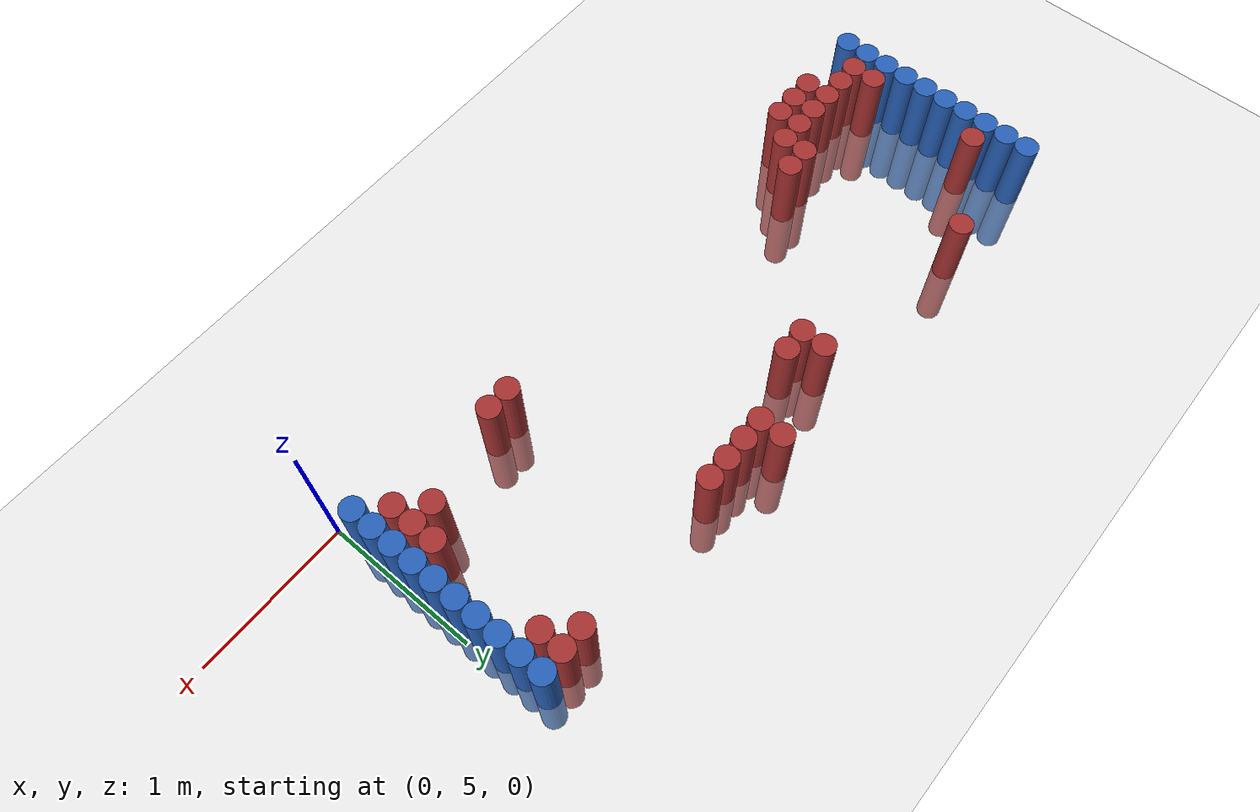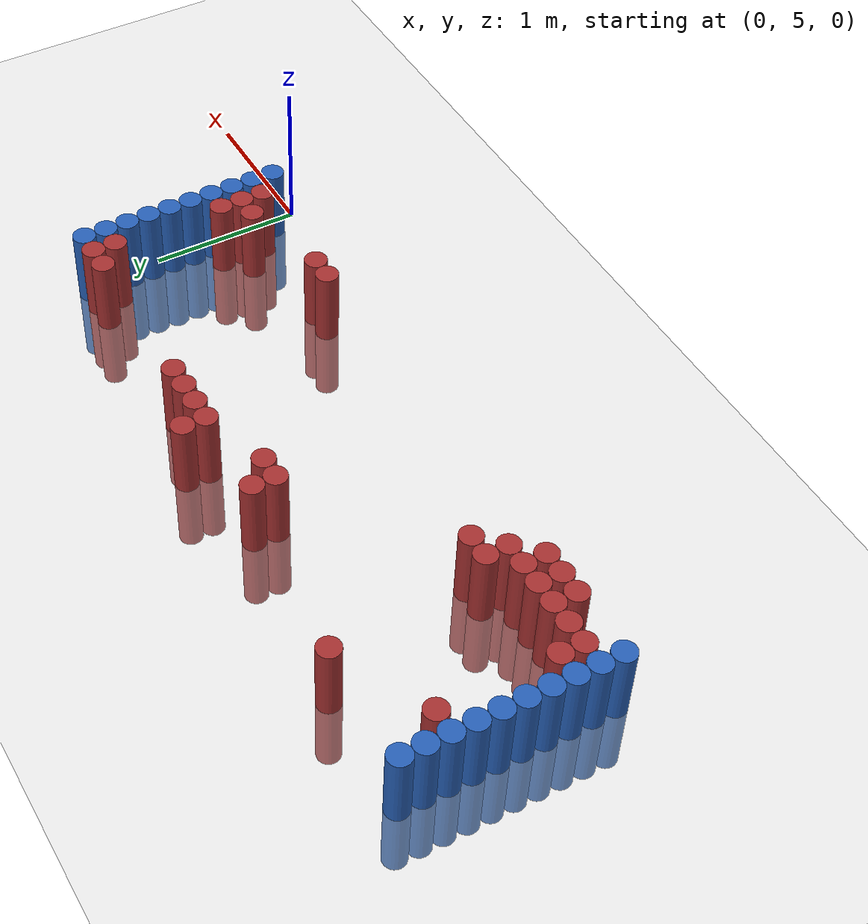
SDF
<sdf version="1.6">
 <world name="default">
  <model name="ground_plane">
   <static>1</static>
   <link name="link">
    <collision name="collision">
     <geometry><plane><normal>0 0 1</normal><size>100 100</size></plane></geometry>
     <surface><friction><ode><mu>100</mu><mu2>50</mu2></ode></friction></surface>
    </collision>
    <visual name="visual">
     <cast_shadows>0</cast_shadows>
     <geometry><plane><normal>0 0 1</normal><size>100 100</size></plane></geometry>
     <material>
      <script><uri>file://media/materials/scripts/gazebo.material</uri><name>Gazebo/Grey</name></script>
     </material>
    </visual>
   </link>
  </model>
  <model name="unit_cylinder_97">
   <static>1</static>
   <pose>-4.425000 5.325000 0.000000 0.000000 0.000000 0.000000</pose>
   <link name="link">
    <inertial>
     <mass>1</mass>
     <inertia><ixx>0.145833</ixx><ixy>0</ixy><ixz>0</ixz><iyy>0.145833</iyy><iyz>0</iyz><izz>0.125</izz></inertia>
    </inertial>
    <collision name="collision">
     <geometry><cylinder><radius>0.075000</radius><length>1</length></cylinder></geometry>
    </collision>
    <visual name="visual">
     <geometry><cylinder><radius>0.075000</radius><length>1</length></cylinder></geometry>
     <material>
      <ambient>0.152000 0.379000 0.720000 1</ambient>
      <diffuse>0.152000 0.379000 0.720000 1</diffuse>
     </material>
     <material>
      <script><name>Gazebo/Grey</name><uri>file://media/materials/scripts/gazebo.material</uri></script>
     </material>
    </visual>
   </link>
  </model>
  <model name="unit_cylinder_98">
   <static>1</static>
   <pose>-4.425000 5.475000 0.000000 0.000000 0.000000 0.000000</pose>
   <link name="link">
    <inertial>
     <mass>1</mass>
     <inertia><ixx>0.145833</ixx><ixy>0</ixy><ixz>0</ixz><iyy>0.145833</iyy><iyz>0</iyz><izz>0.125</izz></inertia>
    </inertial>
    <collision name="collision">
     <geometry><cylinder><radius>0.075000</radius><length>1</length></cylinder></geometry>
    </collision>
    <visual name="visual">
     <geometry><cylinder><radius>0.075000</radius><length>1</length></cylinder></geometry>
     <material>
      <ambient>0.152000 0.379000 0.720000 1</ambient>
      <diffuse>0.152000 0.379000 0.720000 1</diffuse>
     </material>
     <material>
      <script><name>Gazebo/Grey</name><uri>file://media/materials/scripts/gazebo.material</uri></script>
     </material>
    </visual>
   </link>
  </model>
  <model name="unit_cylinder_99">
   <static>1</static>
   <pose>-4.425000 5.625000 0.000000 0.000000 0.000000 0.000000</pose>
   <link name="link">
    <inertial>
     <mass>1</mass>
     <inertia><ixx>0.145833</ixx><ixy>0</ixy><ixz>0</ixz><iyy>0.145833</iyy><iyz>0</iyz><izz>0.125</izz></inertia>
    </inertial>
    <collision name="collision">
     <geometry><cylinder><radius>0.075000</radius><length>1</length></cylinder></geometry>
    </collision>
    <visual name="visual">
     <geometry><cylinder><radius>0.075000</radius><length>1</length></cylinder></geometry>
     <material>
      <ambient>0.152000 0.379000 0.720000 1</ambient>
      <diffuse>0.152000 0.379000 0.720000 1</diffuse>
     </material>
     <material>
      <script><name>Gazebo/Grey</name><uri>file://media/materials/scripts/gazebo.material</uri></script>
     </material>
    </visual>
   </link>
  </model>
  <model name="unit_cylinder_100">
   <static>1</static>
   <pose>-4.425000 5.775000 0.000000 0.000000 0.000000 0.000000</pose>
   <link name="link">
    <inertial>
     <mass>1</mass>
     <inertia><ixx>0.145833</ixx><ixy>0</ixy><ixz>0</ixz><iyy>0.145833</iyy><iyz>0</iyz><izz>0.125</izz></inertia>
    </inertial>
    <collision name="collision">
     <geometry><cylinder><radius>0.075000</radius><length>1</length></cylinder></geometry>
    </collision>
    <visual name="visual">
     <geometry><cylinder><radius>0.075000</radius><length>1</length></cylinder></geometry>
     <material>
      <ambient>0.152000 0.379000 0.720000 1</ambient>
      <diffuse>0.152000 0.379000 0.720000 1</diffuse>
     </material>
     <material>
      <script><name>Gazebo/Grey</name><uri>file://media/materials/scripts/gazebo.material</uri></script>
     </material>
    </visual>
   </link>
  </model>
  <model name="unit_cylinder_101">
   <static>1</static>
   <pose>-4.425000 5.925000 0.000000 0.000000 0.000000 0.000000</pose>
   <link name="link">
    <inertial>
     <mass>1</mass>
     <inertia><ixx>0.145833</ixx><ixy>0</ixy><ixz>0</ixz><iyy>0.145833</iyy><iyz>0</iyz><izz>0.125</izz></inertia>
    </inertial>
    <collision name="collision">
     <geometry><cylinder><radius>0.075000</radius><length>1</length></cylinder></geometry>
    </collision>
    <visual name="visual">
     <geometry><cylinder><radius>0.075000</radius><length>1</length></cylinder></geometry>
     <material>
      <ambient>0.152000 0.379000 0.720000 1</ambient>
      <diffuse>0.152000 0.379000 0.720000 1</diffuse>
     </material>
     <material>
      <script><name>Gazebo/Grey</name><uri>file://media/materials/scripts/gazebo.material</uri></script>
     </material>
    </visual>
   </link>
  </model>
  <model name="unit_cylinder_102">
   <static>1</static>
   <pose>-4.425000 6.075000 0.000000 0.000000 0.000000 0.000000</pose>
   <link name="link">
    <inertial>
     <mass>1</mass>
     <inertia><ixx>0.145833</ixx><ixy>0</ixy><ixz>0</ixz><iyy>0.145833</iyy><iyz>0</iyz><izz>0.125</izz></inertia>
    </inertial>
    <collision name="collision">
     <geometry><cylinder><radius>0.075000</radius><length>1</length></cylinder></geometry>
    </collision>
    <visual name="visual">
     <geometry><cylinder><radius>0.075000</radius><length>1</length></cylinder></geometry>
     <material>
      <ambient>0.152000 0.379000 0.720000 1</ambient>
      <diffuse>0.152000 0.379000 0.720000 1</diffuse>
     </material>
     <material>
      <script><name>Gazebo/Grey</name><uri>file://media/materials/scripts/gazebo.material</uri></script>
     </material>
    </visual>
   </link>
  </model>
  <model name="unit_cylinder_103">
   <static>1</static>
   <pose>-4.425000 6.225000 0.000000 0.000000 0.000000 0.000000</pose>
   <link name="link">
    <inertial>
     <mass>1</mass>
     <inertia><ixx>0.145833</ixx><ixy>0</ixy><ixz>0</ixz><iyy>0.145833</iyy><iyz>0</iyz><izz>0.125</izz></inertia>
    </inertial>
    <collision name="collision">
     <geometry><cylinder><radius>0.075000</radius><length>1</length></cylinder></geometry>
    </collision>
    <visual name="visual">
     <geometry><cylinder><radius>0.075000</radius><length>1</length></cylinder></geometry>
     <material>
      <ambient>0.152000 0.379000 0.720000 1</ambient>
      <diffuse>0.152000 0.379000 0.720000 1</diffuse>
     </material>
     <material>
      <script><name>Gazebo/Grey</name><uri>file://media/materials/scripts/gazebo.material</uri></script>
     </material>
    </visual>
   </link>
  </model>
  <model name="unit_cylinder_104">
   <static>1</static>
   <pose>-4.425000 6.375000 0.000000 0.000000 0.000000 0.000000</pose>
   <link name="link">
    <inertial>
     <mass>1</mass>
     <inertia><ixx>0.145833</ixx><ixy>0</ixy><ixz>0</ixz><iyy>0.145833</iyy><iyz>0</iyz><izz>0.125</izz></inertia>
    </inertial>
    <collision name="collision">
     <geometry><cylinder><radius>0.075000</radius><length>1</length></cylinder></geometry>
    </collision>
    <visual name="visual">
     <geometry><cylinder><radius>0.075000</radius><length>1</length></cylinder></geometry>
     <material>
      <ambient>0.152000 0.379000 0.720000 1</ambient>
      <diffuse>0.152000 0.379000 0.720000 1</diffuse>
     </material>
     <material>
      <script><name>Gazebo/Grey</name><uri>file://media/materials/scripts/gazebo.material</uri></script>
     </material>
    </visual>
   </link>
  </model>
  <model name="unit_cylinder_105">
   <static>1</static>
   <pose>-4.425000 6.525000 0.000000 0.000000 0.000000 0.000000</pose>
   <link name="link">
    <inertial>
     <mass>1</mass>
     <inertia><ixx>0.145833</ixx><ixy>0</ixy><ixz>0</ixz><iyy>0.145833</iyy><iyz>0</iyz><izz>0.125</izz></inertia>
    </inertial>
    <collision name="collision">
     <geometry><cylinder><radius>0.075000</radius><length>1</length></cylinder></geometry>
    </collision>
    <visual name="visual">
     <geometry><cylinder><radius>0.075000</radius><length>1</length></cylinder></geometry>
     <material>
      <ambient>0.152000 0.379000 0.720000 1</ambient>
      <diffuse>0.152000 0.379000 0.720000 1</diffuse>
     </material>
     <material>
      <script><name>Gazebo/Grey</name><uri>file://media/materials/scripts/gazebo.material</uri></script>
     </material>
    </visual>
   </link>
  </model>
  <model name="unit_cylinder_106">
   <static>1</static>
   <pose>-4.425000 6.675000 0.000000 0.000000 0.000000 0.000000</pose>
   <link name="link">
    <inertial>
     <mass>1</mass>
     <inertia><ixx>0.145833</ixx><ixy>0</ixy><ixz>0</ixz><iyy>0.145833</iyy><iyz>0</iyz><izz>0.125</izz></inertia>
    </inertial>
    <collision name="collision">
     <geometry><cylinder><radius>0.075000</radius><length>1</length></cylinder></geometry>
    </collision>
    <visual name="visual">
     <geometry><cylinder><radius>0.075000</radius><length>1</length></cylinder></geometry>
     <material>
      <ambient>0.152000 0.379000 0.720000 1</ambient>
      <diffuse>0.152000 0.379000 0.720000 1</diffuse>
     </material>
     <material>
      <script><name>Gazebo/Grey</name><uri>file://media/materials/scripts/gazebo.material</uri></script>
     </material>
    </visual>
   </link>
  </model>
  <model name="unit_cylinder_127">
   <static>1</static>
   <pose>-4.275000 5.475000 0.000000 0.000000 0.000000 0.000000</pose>
   <link name="link">
    <inertial>
     <mass>1</mass>
     <inertia><ixx>0.145833</ixx><ixy>0</ixy><ixz>0</ixz><iyy>0.145833</iyy><iyz>0</iyz><izz>0.125</izz></inertia>
    </inertial>
    <collision name="collision">
     <geometry><cylinder><radius>0.075000</radius><length>1</length></cylinder></geometry>
    </collision>
    <visual name="visual">
     <geometry><cylinder><radius>0.075000</radius><length>1</length></cylinder></geometry>
     <material>
      <ambient>0.648000 0.192000 0.192000 1</ambient>
      <diffuse>0.648000 0.192000 0.192000 1</diffuse>
     </material>
     <material>
      <script><name>Gazebo/Grey</name><uri>file://media/materials/scripts/gazebo.material</uri></script>
     </material>
    </visual>
   </link>
  </model>
  <model name="unit_cylinder_128">
   <static>1</static>
   <pose>-4.275000 5.625000 0.000000 0.000000 0.000000 0.000000</pose>
   <link name="link">
    <inertial>
     <mass>1</mass>
     <inertia><ixx>0.145833</ixx><ixy>0</ixy><ixz>0</ixz><iyy>0.145833</iyy><iyz>0</iyz><izz>0.125</izz></inertia>
    </inertial>
    <collision name="collision">
     <geometry><cylinder><radius>0.075000</radius><length>1</length></cylinder></geometry>
    </collision>
    <visual name="visual">
     <geometry><cylinder><radius>0.075000</radius><length>1</length></cylinder></geometry>
     <material>
      <ambient>0.648000 0.192000 0.192000 1</ambient>
      <diffuse>0.648000 0.192000 0.192000 1</diffuse>
     </material>
     <material>
      <script><name>Gazebo/Grey</name><uri>file://media/materials/scripts/gazebo.material</uri></script>
     </material>
    </visual>
   </link>
  </model>
  <model name="unit_cylinder_129">
   <static>1</static>
   <pose>-4.275000 6.375000 0.000000 0.000000 0.000000 0.000000</pose>
   <link name="link">
    <inertial>
     <mass>1</mass>
     <inertia><ixx>0.145833</ixx><ixy>0</ixy><ixz>0</ixz><iyy>0.145833</iyy><iyz>0</iyz><izz>0.125</izz></inertia>
    </inertial>
    <collision name="collision">
     <geometry><cylinder><radius>0.075000</radius><length>1</length></cylinder></geometry>
    </collision>
    <visual name="visual">
     <geometry><cylinder><radius>0.075000</radius><length>1</length></cylinder></geometry>
     <material>
      <ambient>0.648000 0.192000 0.192000 1</ambient>
      <diffuse>0.648000 0.192000 0.192000 1</diffuse>
     </material>
     <material>
      <script><name>Gazebo/Grey</name><uri>file://media/materials/scripts/gazebo.material</uri></script>
     </material>
    </visual>
   </link>
  </model>
  <model name="unit_cylinder_135">
   <static>1</static>
   <pose>-4.125000 5.475000 0.000000 0.000000 0.000000 0.000000</pose>
   <link name="link">
    <inertial>
     <mass>1</mass>
     <inertia><ixx>0.145833</ixx><ixy>0</ixy><ixz>0</ixz><iyy>0.145833</iyy><iyz>0</iyz><izz>0.125</izz></inertia>
    </inertial>
    <collision name="collision">
     <geometry><cylinder><radius>0.075000</radius><length>1</length></cylinder></geometry>
    </collision>
    <visual name="visual">
     <geometry><cylinder><radius>0.075000</radius><length>1</length></cylinder></geometry>
     <material>
      <ambient>0.648000 0.192000 0.192000 1</ambient>
      <diffuse>0.648000 0.192000 0.192000 1</diffuse>
     </material>
     <material>
      <script><name>Gazebo/Grey</name><uri>file://media/materials/scripts/gazebo.material</uri></script>
     </material>
    </visual>
   </link>
  </model>
  <model name="unit_cylinder_137">
   <static>1</static>
   <pose>-3.975000 5.325000 0.000000 0.000000 0.000000 0.000000</pose>
   <link name="link">
    <inertial>
     <mass>1</mass>
     <inertia><ixx>0.145833</ixx><ixy>0</ixy><ixz>0</ixz><iyy>0.145833</iyy><iyz>0</iyz><izz>0.125</izz></inertia>
    </inertial>
    <collision name="collision">
     <geometry><cylinder><radius>0.075000</radius><length>1</length></cylinder></geometry>
    </collision>
    <visual name="visual">
     <geometry><cylinder><radius>0.075000</radius><length>1</length></cylinder></geometry>
     <material>
      <ambient>0.648000 0.192000 0.192000 1</ambient>
      <diffuse>0.648000 0.192000 0.192000 1</diffuse>
     </material>
     <material>
      <script><name>Gazebo/Grey</name><uri>file://media/materials/scripts/gazebo.material</uri></script>
     </material>
    </visual>
   </link>
  </model>
  <model name="unit_cylinder_138">
   <static>1</static>
   <pose>-3.975000 5.475000 0.000000 0.000000 0.000000 0.000000</pose>
   <link name="link">
    <inertial>
     <mass>1</mass>
     <inertia><ixx>0.145833</ixx><ixy>0</ixy><ixz>0</ixz><iyy>0.145833</iyy><iyz>0</iyz><izz>0.125</izz></inertia>
    </inertial>
    <collision name="collision">
     <geometry><cylinder><radius>0.075000</radius><length>1</length></cylinder></geometry>
    </collision>
    <visual name="visual">
     <geometry><cylinder><radius>0.075000</radius><length>1</length></cylinder></geometry>
     <material>
      <ambient>0.648000 0.192000 0.192000 1</ambient>
      <diffuse>0.648000 0.192000 0.192000 1</diffuse>
     </material>
     <material>
      <script><name>Gazebo/Grey</name><uri>file://media/materials/scripts/gazebo.material</uri></script>
     </material>
    </visual>
   </link>
  </model>
  <model name="unit_cylinder_139">
   <static>1</static>
   <pose>-3.825000 5.325000 0.000000 0.000000 0.000000 0.000000</pose>
   <link name="link">
    <inertial>
     <mass>1</mass>
     <inertia><ixx>0.145833</ixx><ixy>0</ixy><ixz>0</ixz><iyy>0.145833</iyy><iyz>0</iyz><izz>0.125</izz></inertia>
    </inertial>
    <collision name="collision">
     <geometry><cylinder><radius>0.075000</radius><length>1</length></cylinder></geometry>
    </collision>
    <visual name="visual">
     <geometry><cylinder><radius>0.075000</radius><length>1</length></cylinder></geometry>
     <material>
      <ambient>0.648000 0.192000 0.192000 1</ambient>
      <diffuse>0.648000 0.192000 0.192000 1</diffuse>
     </material>
     <material>
      <script><name>Gazebo/Grey</name><uri>file://media/materials/scripts/gazebo.material</uri></script>
     </material>
    </visual>
   </link>
  </model>
  <model name="unit_cylinder_140">
   <static>1</static>
   <pose>-3.825000 5.475000 0.000000 0.000000 0.000000 0.000000</pose>
   <link name="link">
    <inertial>
     <mass>1</mass>
     <inertia><ixx>0.145833</ixx><ixy>0</ixy><ixz>0</ixz><iyy>0.145833</iyy><iyz>0</iyz><izz>0.125</izz></inertia>
    </inertial>
    <collision name="collision">
     <geometry><cylinder><radius>0.075000</radius><length>1</length></cylinder></geometry>
    </collision>
    <visual name="visual">
     <geometry><cylinder><radius>0.075000</radius><length>1</length></cylinder></geometry>
     <material>
      <ambient>0.648000 0.192000 0.192000 1</ambient>
      <diffuse>0.648000 0.192000 0.192000 1</diffuse>
     </material>
     <material>
      <script><name>Gazebo/Grey</name><uri>file://media/materials/scripts/gazebo.material</uri></script>
     </material>
    </visual>
   </link>
  </model>
  <model name="unit_cylinder_146">
   <static>1</static>
   <pose>-3.675000 5.325000 0.000000 0.000000 0.000000 0.000000</pose>
   <link name="link">
    <inertial>
     <mass>1</mass>
     <inertia><ixx>0.145833</ixx><ixy>0</ixy><ixz>0</ixz><iyy>0.145833</iyy><iyz>0</iyz><izz>0.125</izz></inertia>
    </inertial>
    <collision name="collision">
     <geometry><cylinder><radius>0.075000</radius><length>1</length></cylinder></geometry>
    </collision>
    <visual name="visual">
     <geometry><cylinder><radius>0.075000</radius><length>1</length></cylinder></geometry>
     <material>
      <ambient>0.648000 0.192000 0.192000 1</ambient>
      <diffuse>0.648000 0.192000 0.192000 1</diffuse>
     </material>
     <material>
      <script><name>Gazebo/Grey</name><uri>file://media/materials/scripts/gazebo.material</uri></script>
     </material>
    </visual>
   </link>
  </model>
  <model name="unit_cylinder_147">
   <static>1</static>
   <pose>-3.675000 5.475000 0.000000 0.000000 0.000000 0.000000</pose>
   <link name="link">
    <inertial>
     <mass>1</mass>
     <inertia><ixx>0.145833</ixx><ixy>0</ixy><ixz>0</ixz><iyy>0.145833</iyy><iyz>0</iyz><izz>0.125</izz></inertia>
    </inertial>
    <collision name="collision">
     <geometry><cylinder><radius>0.075000</radius><length>1</length></cylinder></geometry>
    </collision>
    <visual name="visual">
     <geometry><cylinder><radius>0.075000</radius><length>1</length></cylinder></geometry>
     <material>
      <ambient>0.648000 0.192000 0.192000 1</ambient>
      <diffuse>0.648000 0.192000 0.192000 1</diffuse>
     </material>
     <material>
      <script><name>Gazebo/Grey</name><uri>file://media/materials/scripts/gazebo.material</uri></script>
     </material>
    </visual>
   </link>
  </model>
  <model name="unit_cylinder_148">
   <static>1</static>
   <pose>-3.675000 6.675000 0.000000 0.000000 0.000000 0.000000</pose>
   <link name="link">
    <inertial>
     <mass>1</mass>
     <inertia><ixx>0.145833</ixx><ixy>0</ixy><ixz>0</ixz><iyy>0.145833</iyy><iyz>0</iyz><izz>0.125</izz></inertia>
    </inertial>
    <collision name="collision">
     <geometry><cylinder><radius>0.075000</radius><length>1</length></cylinder></geometry>
    </collision>
    <visual name="visual">
     <geometry><cylinder><radius>0.075000</radius><length>1</length></cylinder></geometry>
     <material>
      <ambient>0.648000 0.192000 0.192000 1</ambient>
      <diffuse>0.648000 0.192000 0.192000 1</diffuse>
     </material>
     <material>
      <script><name>Gazebo/Grey</name><uri>file://media/materials/scripts/gazebo.material</uri></script>
     </material>
    </visual>
   </link>
  </model>
  <model name="unit_cylinder_153">
   <static>1</static>
   <pose>-3.525000 5.475000 0.000000 0.000000 0.000000 0.000000</pose>
   <link name="link">
    <inertial>
     <mass>1</mass>
     <inertia><ixx>0.145833</ixx><ixy>0</ixy><ixz>0</ixz><iyy>0.145833</iyy><iyz>0</iyz><izz>0.125</izz></inertia>
    </inertial>
    <collision name="collision">
     <geometry><cylinder><radius>0.075000</radius><length>1</length></cylinder></geometry>
    </collision>
    <visual name="visual">
     <geometry><cylinder><radius>0.075000</radius><length>1</length></cylinder></geometry>
     <material>
      <ambient>0.648000 0.192000 0.192000 1</ambient>
      <diffuse>0.648000 0.192000 0.192000 1</diffuse>
     </material>
     <material>
      <script><name>Gazebo/Grey</name><uri>file://media/materials/scripts/gazebo.material</uri></script>
     </material>
    </visual>
   </link>
  </model>
  <model name="unit_cylinder_154">
   <static>1</static>
   <pose>-3.525000 5.625000 0.000000 0.000000 0.000000 0.000000</pose>
   <link name="link">
    <inertial>
     <mass>1</mass>
     <inertia><ixx>0.145833</ixx><ixy>0</ixy><ixz>0</ixz><iyy>0.145833</iyy><iyz>0</iyz><izz>0.125</izz></inertia>
    </inertial>
    <collision name="collision">
     <geometry><cylinder><radius>0.075000</radius><length>1</length></cylinder></geometry>
    </collision>
    <visual name="visual">
     <geometry><cylinder><radius>0.075000</radius><length>1</length></cylinder></geometry>
     <material>
      <ambient>0.648000 0.192000 0.192000 1</ambient>
      <diffuse>0.648000 0.192000 0.192000 1</diffuse>
     </material>
     <material>
      <script><name>Gazebo/Grey</name><uri>file://media/materials/scripts/gazebo.material</uri></script>
     </material>
    </visual>
   </link>
  </model>
  <model name="unit_cylinder_155">
   <static>1</static>
   <pose>-3.375000 5.625000 0.000000 0.000000 0.000000 0.000000</pose>
   <link name="link">
    <inertial>
     <mass>1</mass>
     <inertia><ixx>0.145833</ixx><ixy>0</ixy><ixz>0</ixz><iyy>0.145833</iyy><iyz>0</iyz><izz>0.125</izz></inertia>
    </inertial>
    <collision name="collision">
     <geometry><cylinder><radius>0.075000</radius><length>1</length></cylinder></geometry>
    </collision>
    <visual name="visual">
     <geometry><cylinder><radius>0.075000</radius><length>1</length></cylinder></geometry>
     <material>
      <ambient>0.648000 0.192000 0.192000 1</ambient>
      <diffuse>0.648000 0.192000 0.192000 1</diffuse>
     </material>
     <material>
      <script><name>Gazebo/Grey</name><uri>file://media/materials/scripts/gazebo.material</uri></script>
     </material>
    </visual>
   </link>
  </model>
  <model name="unit_cylinder_162">
   <static>1</static>
   <pose>-2.475000 6.375000 0.000000 0.000000 0.000000 0.000000</pose>
   <link name="link">
    <inertial>
     <mass>1</mass>
     <inertia><ixx>0.145833</ixx><ixy>0</ixy><ixz>0</ixz><iyy>0.145833</iyy><iyz>0</iyz><izz>0.125</izz></inertia>
    </inertial>
    <collision name="collision">
     <geometry><cylinder><radius>0.075000</radius><length>1</length></cylinder></geometry>
    </collision>
    <visual name="visual">
     <geometry><cylinder><radius>0.075000</radius><length>1</length></cylinder></geometry>
     <material>
      <ambient>0.648000 0.192000 0.192000 1</ambient>
      <diffuse>0.648000 0.192000 0.192000 1</diffuse>
     </material>
     <material>
      <script><name>Gazebo/Grey</name><uri>file://media/materials/scripts/gazebo.material</uri></script>
     </material>
    </visual>
   </link>
  </model>
  <model name="unit_cylinder_163">
   <static>1</static>
   <pose>-2.475000 6.525000 0.000000 0.000000 0.000000 0.000000</pose>
   <link name="link">
    <inertial>
     <mass>1</mass>
     <inertia><ixx>0.145833</ixx><ixy>0</ixy><ixz>0</ixz><iyy>0.145833</iyy><iyz>0</iyz><izz>0.125</izz></inertia>
    </inertial>
    <collision name="collision">
     <geometry><cylinder><radius>0.075000</radius><length>1</length></cylinder></geometry>
    </collision>
    <visual name="visual">
     <geometry><cylinder><radius>0.075000</radius><length>1</length></cylinder></geometry>
     <material>
      <ambient>0.648000 0.192000 0.192000 1</ambient>
      <diffuse>0.648000 0.192000 0.192000 1</diffuse>
     </material>
     <material>
      <script><name>Gazebo/Grey</name><uri>file://media/materials/scripts/gazebo.material</uri></script>
     </material>
    </visual>
   </link>
  </model>
  <model name="unit_cylinder_164">
   <static>1</static>
   <pose>-2.325000 6.375000 0.000000 0.000000 0.000000 0.000000</pose>
   <link name="link">
    <inertial>
     <mass>1</mass>
     <inertia><ixx>0.145833</ixx><ixy>0</ixy><ixz>0</ixz><iyy>0.145833</iyy><iyz>0</iyz><izz>0.125</izz></inertia>
    </inertial>
    <collision name="collision">
     <geometry><cylinder><radius>0.075000</radius><length>1</length></cylinder></geometry>
    </collision>
    <visual name="visual">
     <geometry><cylinder><radius>0.075000</radius><length>1</length></cylinder></geometry>
     <material>
      <ambient>0.648000 0.192000 0.192000 1</ambient>
      <diffuse>0.648000 0.192000 0.192000 1</diffuse>
     </material>
     <material>
      <script><name>Gazebo/Grey</name><uri>file://media/materials/scripts/gazebo.material</uri></script>
     </material>
    </visual>
   </link>
  </model>
  <model name="unit_cylinder_165">
   <static>1</static>
   <pose>-1.875000 6.525000 0.000000 0.000000 0.000000 0.000000</pose>
   <link name="link">
    <inertial>
     <mass>1</mass>
     <inertia><ixx>0.145833</ixx><ixy>0</ixy><ixz>0</ixz><iyy>0.145833</iyy><iyz>0</iyz><izz>0.125</izz></inertia>
    </inertial>
    <collision name="collision">
     <geometry><cylinder><radius>0.075000</radius><length>1</length></cylinder></geometry>
    </collision>
    <visual name="visual">
     <geometry><cylinder><radius>0.075000</radius><length>1</length></cylinder></geometry>
     <material>
      <ambient>0.648000 0.192000 0.192000 1</ambient>
      <diffuse>0.648000 0.192000 0.192000 1</diffuse>
     </material>
     <material>
      <script><name>Gazebo/Grey</name><uri>file://media/materials/scripts/gazebo.material</uri></script>
     </material>
    </visual>
   </link>
  </model>
  <model name="unit_cylinder_166">
   <static>1</static>
   <pose>-1.875000 6.675000 0.000000 0.000000 0.000000 0.000000</pose>
   <link name="link">
    <inertial>
     <mass>1</mass>
     <inertia><ixx>0.145833</ixx><ixy>0</ixy><ixz>0</ixz><iyy>0.145833</iyy><iyz>0</iyz><izz>0.125</izz></inertia>
    </inertial>
    <collision name="collision">
     <geometry><cylinder><radius>0.075000</radius><length>1</length></cylinder></geometry>
    </collision>
    <visual name="visual">
     <geometry><cylinder><radius>0.075000</radius><length>1</length></cylinder></geometry>
     <material>
      <ambient>0.648000 0.192000 0.192000 1</ambient>
      <diffuse>0.648000 0.192000 0.192000 1</diffuse>
     </material>
     <material>
      <script><name>Gazebo/Grey</name><uri>file://media/materials/scripts/gazebo.material</uri></script>
     </material>
    </visual>
   </link>
  </model>
  <model name="unit_cylinder_170">
   <static>1</static>
   <pose>-1.725000 6.525000 0.000000 0.000000 0.000000 0.000000</pose>
   <link name="link">
    <inertial>
     <mass>1</mass>
     <inertia><ixx>0.145833</ixx><ixy>0</ixy><ixz>0</ixz><iyy>0.145833</iyy><iyz>0</iyz><izz>0.125</izz></inertia>
    </inertial>
    <collision name="collision">
     <geometry><cylinder><radius>0.075000</radius><length>1</length></cylinder></geometry>
    </collision>
    <visual name="visual">
     <geometry><cylinder><radius>0.075000</radius><length>1</length></cylinder></geometry>
     <material>
      <ambient>0.648000 0.192000 0.192000 1</ambient>
      <diffuse>0.648000 0.192000 0.192000 1</diffuse>
     </material>
     <material>
      <script><name>Gazebo/Grey</name><uri>file://media/materials/scripts/gazebo.material</uri></script>
     </material>
    </visual>
   </link>
  </model>
  <model name="unit_cylinder_176">
   <static>1</static>
   <pose>-1.575000 6.525000 0.000000 0.000000 0.000000 0.000000</pose>
   <link name="link">
    <inertial>
     <mass>1</mass>
     <inertia><ixx>0.145833</ixx><ixy>0</ixy><ixz>0</ixz><iyy>0.145833</iyy><iyz>0</iyz><izz>0.125</izz></inertia>
    </inertial>
    <collision name="collision">
     <geometry><cylinder><radius>0.075000</radius><length>1</length></cylinder></geometry>
    </collision>
    <visual name="visual">
     <geometry><cylinder><radius>0.075000</radius><length>1</length></cylinder></geometry>
     <material>
      <ambient>0.648000 0.192000 0.192000 1</ambient>
      <diffuse>0.648000 0.192000 0.192000 1</diffuse>
     </material>
     <material>
      <script><name>Gazebo/Grey</name><uri>file://media/materials/scripts/gazebo.material</uri></script>
     </material>
    </visual>
   </link>
  </model>
  <model name="unit_cylinder_183">
   <static>1</static>
   <pose>-1.425000 6.525000 0.000000 0.000000 0.000000 0.000000</pose>
   <link name="link">
    <inertial>
     <mass>1</mass>
     <inertia><ixx>0.145833</ixx><ixy>0</ixy><ixz>0</ixz><iyy>0.145833</iyy><iyz>0</iyz><izz>0.125</izz></inertia>
    </inertial>
    <collision name="collision">
     <geometry><cylinder><radius>0.075000</radius><length>1</length></cylinder></geometry>
    </collision>
    <visual name="visual">
     <geometry><cylinder><radius>0.075000</radius><length>1</length></cylinder></geometry>
     <material>
      <ambient>0.648000 0.192000 0.192000 1</ambient>
      <diffuse>0.648000 0.192000 0.192000 1</diffuse>
     </material>
     <material>
      <script><name>Gazebo/Grey</name><uri>file://media/materials/scripts/gazebo.material</uri></script>
     </material>
    </visual>
   </link>
  </model>
  <model name="unit_cylinder_187">
   <static>1</static>
   <pose>-1.125000 5.325000 0.000000 0.000000 0.000000 0.000000</pose>
   <link name="link">
    <inertial>
     <mass>1</mass>
     <inertia><ixx>0.145833</ixx><ixy>0</ixy><ixz>0</ixz><iyy>0.145833</iyy><iyz>0</iyz><izz>0.125</izz></inertia>
    </inertial>
    <collision name="collision">
     <geometry><cylinder><radius>0.075000</radius><length>1</length></cylinder></geometry>
    </collision>
    <visual name="visual">
     <geometry><cylinder><radius>0.075000</radius><length>1</length></cylinder></geometry>
     <material>
      <ambient>0.648000 0.192000 0.192000 1</ambient>
      <diffuse>0.648000 0.192000 0.192000 1</diffuse>
     </material>
     <material>
      <script><name>Gazebo/Grey</name><uri>file://media/materials/scripts/gazebo.material</uri></script>
     </material>
    </visual>
   </link>
  </model>
  <model name="unit_cylinder_191">
   <static>1</static>
   <pose>-0.975000 5.325000 0.000000 0.000000 0.000000 0.000000</pose>
   <link name="link">
    <inertial>
     <mass>1</mass>
     <inertia><ixx>0.145833</ixx><ixy>0</ixy><ixz>0</ixz><iyy>0.145833</iyy><iyz>0</iyz><izz>0.125</izz></inertia>
    </inertial>
    <collision name="collision">
     <geometry><cylinder><radius>0.075000</radius><length>1</length></cylinder></geometry>
    </collision>
    <visual name="visual">
     <geometry><cylinder><radius>0.075000</radius><length>1</length></cylinder></geometry>
     <material>
      <ambient>0.648000 0.192000 0.192000 1</ambient>
      <diffuse>0.648000 0.192000 0.192000 1</diffuse>
     </material>
     <material>
      <script><name>Gazebo/Grey</name><uri>file://media/materials/scripts/gazebo.material</uri></script>
     </material>
    </visual>
   </link>
  </model>
  <model name="unit_cylinder_203">
   <static>1</static>
   <pose>-0.375000 5.475000 0.000000 0.000000 0.000000 0.000000</pose>
   <link name="link">
    <inertial>
     <mass>1</mass>
     <inertia><ixx>0.145833</ixx><ixy>0</ixy><ixz>0</ixz><iyy>0.145833</iyy><iyz>0</iyz><izz>0.125</izz></inertia>
    </inertial>
    <collision name="collision">
     <geometry><cylinder><radius>0.075000</radius><length>1</length></cylinder></geometry>
    </collision>
    <visual name="visual">
     <geometry><cylinder><radius>0.075000</radius><length>1</length></cylinder></geometry>
     <material>
      <ambient>0.648000 0.192000 0.192000 1</ambient>
      <diffuse>0.648000 0.192000 0.192000 1</diffuse>
     </material>
     <material>
      <script><name>Gazebo/Grey</name><uri>file://media/materials/scripts/gazebo.material</uri></script>
     </material>
    </visual>
   </link>
  </model>
  <model name="unit_cylinder_204">
   <static>1</static>
   <pose>-0.375000 6.525000 0.000000 0.000000 0.000000 0.000000</pose>
   <link name="link">
    <inertial>
     <mass>1</mass>
     <inertia><ixx>0.145833</ixx><ixy>0</ixy><ixz>0</ixz><iyy>0.145833</iyy><iyz>0</iyz><izz>0.125</izz></inertia>
    </inertial>
    <collision name="collision">
     <geometry><cylinder><radius>0.075000</radius><length>1</length></cylinder></geometry>
    </collision>
    <visual name="visual">
     <geometry><cylinder><radius>0.075000</radius><length>1</length></cylinder></geometry>
     <material>
      <ambient>0.648000 0.192000 0.192000 1</ambient>
      <diffuse>0.648000 0.192000 0.192000 1</diffuse>
     </material>
     <material>
      <script><name>Gazebo/Grey</name><uri>file://media/materials/scripts/gazebo.material</uri></script>
     </material>
    </visual>
   </link>
  </model>
  <model name="unit_cylinder_208">
   <static>1</static>
   <pose>-0.225000 5.325000 0.000000 0.000000 0.000000 0.000000</pose>
   <link name="link">
    <inertial>
     <mass>1</mass>
     <inertia><ixx>0.145833</ixx><ixy>0</ixy><ixz>0</ixz><iyy>0.145833</iyy><iyz>0</iyz><izz>0.125</izz></inertia>
    </inertial>
    <collision name="collision">
     <geometry><cylinder><radius>0.075000</radius><length>1</length></cylinder></geometry>
    </collision>
    <visual name="visual">
     <geometry><cylinder><radius>0.075000</radius><length>1</length></cylinder></geometry>
     <material>
      <ambient>0.648000 0.192000 0.192000 1</ambient>
      <diffuse>0.648000 0.192000 0.192000 1</diffuse>
     </material>
     <material>
      <script><name>Gazebo/Grey</name><uri>file://media/materials/scripts/gazebo.material</uri></script>
     </material>
    </visual>
   </link>
  </model>
  <model name="unit_cylinder_209">
   <static>1</static>
   <pose>-0.225000 5.475000 0.000000 0.000000 0.000000 0.000000</pose>
   <link name="link">
    <inertial>
     <mass>1</mass>
     <inertia><ixx>0.145833</ixx><ixy>0</ixy><ixz>0</ixz><iyy>0.145833</iyy><iyz>0</iyz><izz>0.125</izz></inertia>
    </inertial>
    <collision name="collision">
     <geometry><cylinder><radius>0.075000</radius><length>1</length></cylinder></geometry>
    </collision>
    <visual name="visual">
     <geometry><cylinder><radius>0.075000</radius><length>1</length></cylinder></geometry>
     <material>
      <ambient>0.648000 0.192000 0.192000 1</ambient>
      <diffuse>0.648000 0.192000 0.192000 1</diffuse>
     </material>
     <material>
      <script><name>Gazebo/Grey</name><uri>file://media/materials/scripts/gazebo.material</uri></script>
     </material>
    </visual>
   </link>
  </model>
  <model name="unit_cylinder_210">
   <static>1</static>
   <pose>-0.225000 5.625000 0.000000 0.000000 0.000000 0.000000</pose>
   <link name="link">
    <inertial>
     <mass>1</mass>
     <inertia><ixx>0.145833</ixx><ixy>0</ixy><ixz>0</ixz><iyy>0.145833</iyy><iyz>0</iyz><izz>0.125</izz></inertia>
    </inertial>
    <collision name="collision">
     <geometry><cylinder><radius>0.075000</radius><length>1</length></cylinder></geometry>
    </collision>
    <visual name="visual">
     <geometry><cylinder><radius>0.075000</radius><length>1</length></cylinder></geometry>
     <material>
      <ambient>0.648000 0.192000 0.192000 1</ambient>
      <diffuse>0.648000 0.192000 0.192000 1</diffuse>
     </material>
     <material>
      <script><name>Gazebo/Grey</name><uri>file://media/materials/scripts/gazebo.material</uri></script>
     </material>
    </visual>
   </link>
  </model>
  <model name="unit_cylinder_211">
   <static>1</static>
   <pose>-0.225000 6.375000 0.000000 0.000000 0.000000 0.000000</pose>
   <link name="link">
    <inertial>
     <mass>1</mass>
     <inertia><ixx>0.145833</ixx><ixy>0</ixy><ixz>0</ixz><iyy>0.145833</iyy><iyz>0</iyz><izz>0.125</izz></inertia>
    </inertial>
    <collision name="collision">
     <geometry><cylinder><radius>0.075000</radius><length>1</length></cylinder></geometry>
    </collision>
    <visual name="visual">
     <geometry><cylinder><radius>0.075000</radius><length>1</length></cylinder></geometry>
     <material>
      <ambient>0.648000 0.192000 0.192000 1</ambient>
      <diffuse>0.648000 0.192000 0.192000 1</diffuse>
     </material>
     <material>
      <script><name>Gazebo/Grey</name><uri>file://media/materials/scripts/gazebo.material</uri></script>
     </material>
    </visual>
   </link>
  </model>
  <model name="unit_cylinder_212">
   <static>1</static>
   <pose>-0.225000 6.525000 0.000000 0.000000 0.000000 0.000000</pose>
   <link name="link">
    <inertial>
     <mass>1</mass>
     <inertia><ixx>0.145833</ixx><ixy>0</ixy><ixz>0</ixz><iyy>0.145833</iyy><iyz>0</iyz><izz>0.125</izz></inertia>
    </inertial>
    <collision name="collision">
     <geometry><cylinder><radius>0.075000</radius><length>1</length></cylinder></geometry>
    </collision>
    <visual name="visual">
     <geometry><cylinder><radius>0.075000</radius><length>1</length></cylinder></geometry>
     <material>
      <ambient>0.648000 0.192000 0.192000 1</ambient>
      <diffuse>0.648000 0.192000 0.192000 1</diffuse>
     </material>
     <material>
      <script><name>Gazebo/Grey</name><uri>file://media/materials/scripts/gazebo.material</uri></script>
     </material>
    </visual>
   </link>
  </model>
  <model name="unit_cylinder_223">
   <static>1</static>
   <pose>-0.075000 5.175000 0.000000 0.000000 0.000000 0.000000</pose>
   <link name="link">
    <inertial>
     <mass>1</mass>
     <inertia><ixx>0.145833</ixx><ixy>0</ixy><ixz>0</ixz><iyy>0.145833</iyy><iyz>0</iyz><izz>0.125</izz></inertia>
    </inertial>
    <collision name="collision">
     <geometry><cylinder><radius>0.075000</radius><length>1</length></cylinder></geometry>
    </collision>
    <visual name="visual">
     <geometry><cylinder><radius>0.075000</radius><length>1</length></cylinder></geometry>
     <material>
      <ambient>0.152000 0.379000 0.720000 1</ambient>
      <diffuse>0.152000 0.379000 0.720000 1</diffuse>
     </material>
     <material>
      <script><name>Gazebo/Grey</name><uri>file://media/materials/scripts/gazebo.material</uri></script>
     </material>
    </visual>
   </link>
  </model>
  <model name="unit_cylinder_224">
   <static>1</static>
   <pose>-0.075000 5.325000 0.000000 0.000000 0.000000 0.000000</pose>
   <link name="link">
    <inertial>
     <mass>1</mass>
     <inertia><ixx>0.145833</ixx><ixy>0</ixy><ixz>0</ixz><iyy>0.145833</iyy><iyz>0</iyz><izz>0.125</izz></inertia>
    </inertial>
    <collision name="collision">
     <geometry><cylinder><radius>0.075000</radius><length>1</length></cylinder></geometry>
    </collision>
    <visual name="visual">
     <geometry><cylinder><radius>0.075000</radius><length>1</length></cylinder></geometry>
     <material>
      <ambient>0.152000 0.379000 0.720000 1</ambient>
      <diffuse>0.152000 0.379000 0.720000 1</diffuse>
     </material>
     <material>
      <script><name>Gazebo/Grey</name><uri>file://media/materials/scripts/gazebo.material</uri></script>
     </material>
    </visual>
   </link>
  </model>
  <model name="unit_cylinder_225">
   <static>1</static>
   <pose>-0.075000 5.475000 0.000000 0.000000 0.000000 0.000000</pose>
   <link name="link">
    <inertial>
     <mass>1</mass>
     <inertia><ixx>0.145833</ixx><ixy>0</ixy><ixz>0</ixz><iyy>0.145833</iyy><iyz>0</iyz><izz>0.125</izz></inertia>
    </inertial>
    <collision name="collision">
     <geometry><cylinder><radius>0.075000</radius><length>1</length></cylinder></geometry>
    </collision>
    <visual name="visual">
     <geometry><cylinder><radius>0.075000</radius><length>1</length></cylinder></geometry>
     <material>
      <ambient>0.152000 0.379000 0.720000 1</ambient>
      <diffuse>0.152000 0.379000 0.720000 1</diffuse>
     </material>
     <material>
      <script><name>Gazebo/Grey</name><uri>file://media/materials/scripts/gazebo.material</uri></script>
     </material>
    </visual>
   </link>
  </model>
  <model name="unit_cylinder_226">
   <static>1</static>
   <pose>-0.075000 5.625000 0.000000 0.000000 0.000000 0.000000</pose>
   <link name="link">
    <inertial>
     <mass>1</mass>
     <inertia><ixx>0.145833</ixx><ixy>0</ixy><ixz>0</ixz><iyy>0.145833</iyy><iyz>0</iyz><izz>0.125</izz></inertia>
    </inertial>
    <collision name="collision">
     <geometry><cylinder><radius>0.075000</radius><length>1</length></cylinder></geometry>
    </collision>
    <visual name="visual">
     <geometry><cylinder><radius>0.075000</radius><length>1</length></cylinder></geometry>
     <material>
      <ambient>0.152000 0.379000 0.720000 1</ambient>
      <diffuse>0.152000 0.379000 0.720000 1</diffuse>
     </material>
     <material>
      <script><name>Gazebo/Grey</name><uri>file://media/materials/scripts/gazebo.material</uri></script>
     </material>
    </visual>
   </link>
  </model>
  <model name="unit_cylinder_227">
   <static>1</static>
   <pose>-0.075000 5.775000 0.000000 0.000000 0.000000 0.000000</pose>
   <link name="link">
    <inertial>
     <mass>1</mass>
     <inertia><ixx>0.145833</ixx><ixy>0</ixy><ixz>0</ixz><iyy>0.145833</iyy><iyz>0</iyz><izz>0.125</izz></inertia>
    </inertial>
    <collision name="collision">
     <geometry><cylinder><radius>0.075000</radius><length>1</length></cylinder></geometry>
    </collision>
    <visual name="visual">
     <geometry><cylinder><radius>0.075000</radius><length>1</length></cylinder></geometry>
     <material>
      <ambient>0.152000 0.379000 0.720000 1</ambient>
      <diffuse>0.152000 0.379000 0.720000 1</diffuse>
     </material>
     <material>
      <script><name>Gazebo/Grey</name><uri>file://media/materials/scripts/gazebo.material</uri></script>
     </material>
    </visual>
   </link>
  </model>
  <model name="unit_cylinder_228">
   <static>1</static>
   <pose>-0.075000 5.925000 0.000000 0.000000 0.000000 0.000000</pose>
   <link name="link">
    <inertial>
     <mass>1</mass>
     <inertia><ixx>0.145833</ixx><ixy>0</ixy><ixz>0</ixz><iyy>0.145833</iyy><iyz>0</iyz><izz>0.125</izz></inertia>
    </inertial>
    <collision name="collision">
     <geometry><cylinder><radius>0.075000</radius><length>1</length></cylinder></geometry>
    </collision>
    <visual name="visual">
     <geometry><cylinder><radius>0.075000</radius><length>1</length></cylinder></geometry>
     <material>
      <ambient>0.152000 0.379000 0.720000 1</ambient>
      <diffuse>0.152000 0.379000 0.720000 1</diffuse>
     </material>
     <material>
      <script><name>Gazebo/Grey</name><uri>file://media/materials/scripts/gazebo.material</uri></script>
     </material>
    </visual>
   </link>
  </model>
  <model name="unit_cylinder_229">
   <static>1</static>
   <pose>-0.075000 6.075000 0.000000 0.000000 0.000000 0.000000</pose>
   <link name="link">
    <inertial>
     <mass>1</mass>
     <inertia><ixx>0.145833</ixx><ixy>0</ixy><ixz>0</ixz><iyy>0.145833</iyy><iyz>0</iyz><izz>0.125</izz></inertia>
    </inertial>
    <collision name="collision">
     <geometry><cylinder><radius>0.075000</radius><length>1</length></cylinder></geometry>
    </collision>
    <visual name="visual">
     <geometry><cylinder><radius>0.075000</radius><length>1</length></cylinder></geometry>
     <material>
      <ambient>0.152000 0.379000 0.720000 1</ambient>
      <diffuse>0.152000 0.379000 0.720000 1</diffuse>
     </material>
     <material>
      <script><name>Gazebo/Grey</name><uri>file://media/materials/scripts/gazebo.material</uri></script>
     </material>
    </visual>
   </link>
  </model>
  <model name="unit_cylinder_230">
   <static>1</static>
   <pose>-0.075000 6.225000 0.000000 0.000000 0.000000 0.000000</pose>
   <link name="link">
    <inertial>
     <mass>1</mass>
     <inertia><ixx>0.145833</ixx><ixy>0</ixy><ixz>0</ixz><iyy>0.145833</iyy><iyz>0</iyz><izz>0.125</izz></inertia>
    </inertial>
    <collision name="collision">
     <geometry><cylinder><radius>0.075000</radius><length>1</length></cylinder></geometry>
    </collision>
    <visual name="visual">
     <geometry><cylinder><radius>0.075000</radius><length>1</length></cylinder></geometry>
     <material>
      <ambient>0.152000 0.379000 0.720000 1</ambient>
      <diffuse>0.152000 0.379000 0.720000 1</diffuse>
     </material>
     <material>
      <script><name>Gazebo/Grey</name><uri>file://media/materials/scripts/gazebo.material</uri></script>
     </material>
    </visual>
   </link>
  </model>
  <model name="unit_cylinder_231">
   <static>1</static>
   <pose>-0.075000 6.375000 0.000000 0.000000 0.000000 0.000000</pose>
   <link name="link">
    <inertial>
     <mass>1</mass>
     <inertia><ixx>0.145833</ixx><ixy>0</ixy><ixz>0</ixz><iyy>0.145833</iyy><iyz>0</iyz><izz>0.125</izz></inertia>
    </inertial>
    <collision name="collision">
     <geometry><cylinder><radius>0.075000</radius><length>1</length></cylinder></geometry>
    </collision>
    <visual name="visual">
     <geometry><cylinder><radius>0.075000</radius><length>1</length></cylinder></geometry>
     <material>
      <ambient>0.152000 0.379000 0.720000 1</ambient>
      <diffuse>0.152000 0.379000 0.720000 1</diffuse>
     </material>
     <material>
      <script><name>Gazebo/Grey</name><uri>file://media/materials/scripts/gazebo.material</uri></script>
     </material>
    </visual>
   </link>
  </model>
  <model name="unit_cylinder_232">
   <static>1</static>
   <pose>-0.075000 6.525000 0.000000 0.000000 0.000000 0.000000</pose>
   <link name="link">
    <inertial>
     <mass>1</mass>
     <inertia><ixx>0.145833</ixx><ixy>0</ixy><ixz>0</ixz><iyy>0.145833</iyy><iyz>0</iyz><izz>0.125</izz></inertia>
    </inertial>
    <collision name="collision">
     <geometry><cylinder><radius>0.075000</radius><length>1</length></cylinder></geometry>
    </collision>
    <visual name="visual">
     <geometry><cylinder><radius>0.075000</radius><length>1</length></cylinder></geometry>
     <material>
      <ambient>0.152000 0.379000 0.720000 1</ambient>
      <diffuse>0.152000 0.379000 0.720000 1</diffuse>
     </material>
     <material>
      <script><name>Gazebo/Grey</name><uri>file://media/materials/scripts/gazebo.material</uri></script>
     </material>
    </visual>
   </link>
  </model>
 </world>
</sdf>
